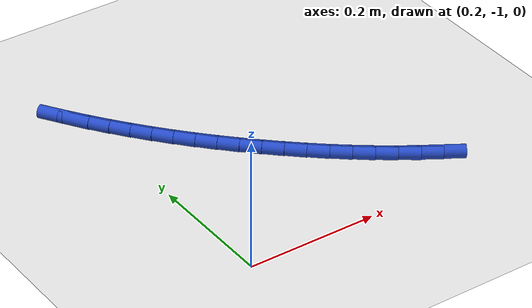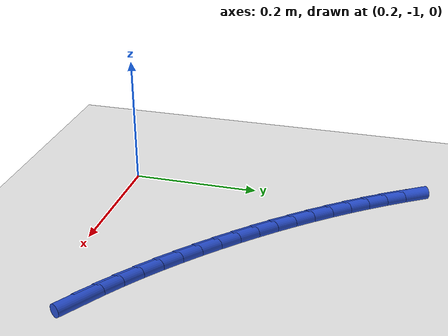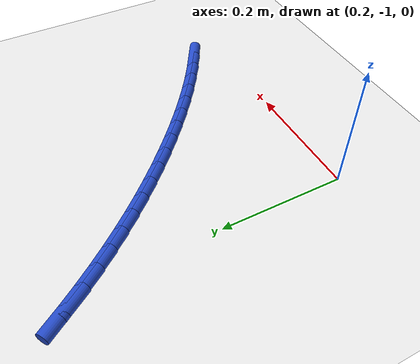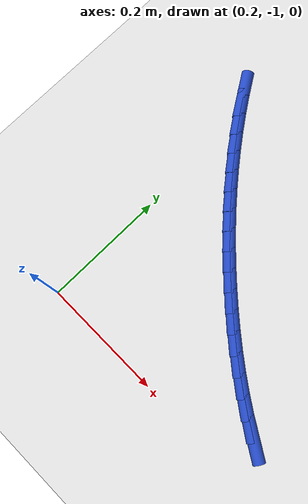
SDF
<sdf version="1.6">
 <world name="default">
  <model name="ground_plane">
   <static>1</static>
   <link name="link">
    <collision name="collision">
     <geometry><plane><normal>0 0 1</normal><size>100 100</size></plane></geometry>
     <surface><friction><ode><mu>100</mu><mu2>50</mu2></ode></friction></surface>
    </collision>
    <visual name="visual">
     <cast_shadows>0</cast_shadows>
     <geometry><plane><normal>0 0 1</normal><size>100 100</size></plane></geometry>
     <material>
      <script><uri>file://media/materials/scripts/gazebo.material</uri><name>Gazebo/WhiteGlow</name></script>
     </material>
    </visual>
   </link>
  </model>
  <model name="line">
   <link name="link_174">
    <pose>0.5600240665475372 -0.9397305397260841 0.01 0 1.57 -0.5530464830940499</pose>
    <collision name="collision">
     <geometry><cylinder><radius>0.01</radius><length>0.08</length></cylinder></geometry>
    </collision>
    <visual name="visual">
     <material>
      <script><name>Gazebo/Blue</name><uri>file://media/materials/scripts/gazebo.material</uri></script>
     </material>
     <geometry><cylinder><radius>0.01</radius><length>0.08</length></cylinder></geometry>
    </visual>
   </link>
   <link name="link_175">
    <pose>0.5330754842858729 -0.9230950526936753 0.01 0 1.57 -0.5882646371806903</pose>
    <collision name="collision">
     <geometry><cylinder><radius>0.01</radius><length>0.08</length></cylinder></geometry>
    </collision>
    <visual name="visual">
     <material>
      <script><name>Gazebo/Blue</name><uri>file://media/materials/scripts/gazebo.material</uri></script>
     </material>
     <geometry><cylinder><radius>0.01</radius><length>0.08</length></cylinder></geometry>
    </visual>
   </link>
   <link name="link_176">
    <pose>0.5066585546354913 -0.905473765889272 0.01 0 1.57 -0.6210084769775372</pose>
    <collision name="collision">
     <geometry><cylinder><radius>0.01</radius><length>0.08</length></cylinder></geometry>
    </collision>
    <visual name="visual">
     <material>
      <script><name>Gazebo/Blue</name><uri>file://media/materials/scripts/gazebo.material</uri></script>
     </material>
     <geometry><cylinder><radius>0.01</radius><length>0.08</length></cylinder></geometry>
    </visual>
   </link>
   <link name="link_177">
    <pose>0.48077214354737313 -0.8869537843397152 0.01 0 1.57 -0.6513743819536956</pose>
    <collision name="collision">
     <geometry><cylinder><radius>0.01</radius><length>0.08</length></cylinder></geometry>
    </collision>
    <visual name="visual">
     <material>
      <script><name>Gazebo/Blue</name><uri>file://media/materials/scripts/gazebo.material</uri></script>
     </material>
     <geometry><cylinder><radius>0.01</radius><length>0.08</length></cylinder></geometry>
    </visual>
   </link>
   <link name="link_178">
    <pose>0.4554151169724969 -0.8676222130718451 0.01 0 1.57 -0.6794636369965935</pose>
    <collision name="collision">
     <geometry><cylinder><radius>0.01</radius><length>0.08</length></cylinder></geometry>
    </collision>
    <visual name="visual">
     <material>
      <script><name>Gazebo/Blue</name><uri>file://media/materials/scripts/gazebo.material</uri></script>
     </material>
     <geometry><cylinder><radius>0.01</radius><length>0.08</length></cylinder></geometry>
    </visual>
   </link>
   <link name="link_179">
    <pose>0.43058634086184194 -0.847566157112501 0.01 0 1.57 -0.7053779009258652</pose>
    <collision name="collision">
     <geometry><cylinder><radius>0.01</radius><length>0.08</length></cylinder></geometry>
    </collision>
    <visual name="visual">
     <material>
      <script><name>Gazebo/Blue</name><uri>file://media/materials/scripts/gazebo.material</uri></script>
     </material>
     <geometry><cylinder><radius>0.01</radius><length>0.08</length></cylinder></geometry>
    </visual>
   </link>
   <link name="link_180">
    <pose>0.4062846811663875 -0.8268727214885236 0.01 0 1.57 -0.7292158086648249</pose>
    <collision name="collision">
     <geometry><cylinder><radius>0.01</radius><length>0.08</length></cylinder></geometry>
    </collision>
    <visual name="visual">
     <material>
      <script><name>Gazebo/Blue</name><uri>file://media/materials/scripts/gazebo.material</uri></script>
     </material>
     <geometry><cylinder><radius>0.01</radius><length>0.08</length></cylinder></geometry>
    </visual>
   </link>
   <link name="link_181">
    <pose>0.382509004824123 -0.8056290052012421 0.01 0 1.57 -0.7515646771364972</pose>
    <collision name="collision">
     <geometry><cylinder><radius>0.01</radius><length>0.08</length></cylinder></geometry>
    </collision>
    <visual name="visual">
     <material>
      <script><name>Gazebo/Blue</name><uri>file://media/materials/scripts/gazebo.material</uri></script>
     </material>
     <geometry><cylinder><radius>0.01</radius><length>0.08</length></cylinder></geometry>
    </visual>
   </link>
   <link name="link_182">
    <pose>0.3592612389764074 -0.7839034252914959 0.01 0 1.57 -0.774062361563729</pose>
    <collision name="collision">
     <geometry><cylinder><radius>0.01</radius><length>0.08</length></cylinder></geometry>
    </collision>
    <visual name="visual">
     <material>
      <script><name>Gazebo/Blue</name><uri>file://media/materials/scripts/gazebo.material</uri></script>
     </material>
     <geometry><cylinder><radius>0.01</radius><length>0.08</length></cylinder></geometry>
    </visual>
   </link>
   <link name="link_183">
    <pose>0.33655313814658255 -0.7617044044991529 0.01 0 1.57 -0.7970268244014338</pose>
    <collision name="collision">
     <geometry><cylinder><radius>0.01</radius><length>0.08</length></cylinder></geometry>
    </collision>
    <visual name="visual">
     <material>
      <script><name>Gazebo/Blue</name><uri>file://media/materials/scripts/gazebo.material</uri></script>
     </material>
     <geometry><cylinder><radius>0.01</radius><length>0.08</length></cylinder></geometry>
    </visual>
   </link>
   <link name="link_184">
    <pose>0.3143984256206484 -0.739028346641901 0.01 0 1.57 -0.8204517393822173</pose>
    <collision name="collision">
     <geometry><cylinder><radius>0.01</radius><length>0.08</length></cylinder></geometry>
    </collision>
    <visual name="visual">
     <material>
      <script><name>Gazebo/Blue</name><uri>file://media/materials/scripts/gazebo.material</uri></script>
     </material>
     <geometry><cylinder><radius>0.01</radius><length>0.08</length></cylinder></geometry>
    </visual>
   </link>
   <link name="link_185">
    <pose>0.29281082468460307 -0.7158716555374269 0.01 0 1.57 -0.8443285287022123</pose>
    <collision name="collision">
     <geometry><cylinder><radius>0.01</radius><length>0.08</length></cylinder></geometry>
    </collision>
    <visual name="visual">
     <material>
      <script><name>Gazebo/Blue</name><uri>file://media/materials/scripts/gazebo.material</uri></script>
     </material>
     <geometry><cylinder><radius>0.01</radius><length>0.08</length></cylinder></geometry>
    </visual>
   </link>
   <link name="link_186">
    <pose>0.27180405862444523 -0.6922307350034175 0.01 0 1.57 -0.8686462404611859</pose>
    <collision name="collision">
     <geometry><cylinder><radius>0.01</radius><length>0.08</length></cylinder></geometry>
    </collision>
    <visual name="visual">
     <material>
      <script><name>Gazebo/Blue</name><uri>file://media/materials/scripts/gazebo.material</uri></script>
     </material>
     <geometry><cylinder><radius>0.01</radius><length>0.08</length></cylinder></geometry>
    </visual>
   </link>
   <link name="link_187">
    <pose>0.2513918507261736 -0.668101988857559 0.01 0 1.57 -0.8933914441823287</pose>
    <collision name="collision">
     <geometry><cylinder><radius>0.01</radius><length>0.08</length></cylinder></geometry>
    </collision>
    <visual name="visual">
     <material>
      <script><name>Gazebo/Blue</name><uri>file://media/materials/scripts/gazebo.material</uri></script>
     </material>
     <geometry><cylinder><radius>0.01</radius><length>0.08</length></cylinder></geometry>
    </visual>
   </link>
   <link name="link_188">
    <pose>0.2315879242757869 -0.643481820917539 0.01 0 1.57 -0.9185481488001748</pose>
    <collision name="collision">
     <geometry><cylinder><radius>0.01</radius><length>0.08</length></cylinder></geometry>
    </collision>
    <visual name="visual">
     <material>
      <script><name>Gazebo/Blue</name><uri>file://media/materials/scripts/gazebo.material</uri></script>
     </material>
     <geometry><cylinder><radius>0.01</radius><length>0.08</length></cylinder></geometry>
    </visual>
   </link>
   <link name="link_189">
    <pose>0.21240600255928335 -0.6183666350010436 0.01 0 1.57 -0.9440977474920044</pose>
    <collision name="collision">
     <geometry><cylinder><radius>0.01</radius><length>0.08</length></cylinder></geometry>
    </collision>
    <visual name="visual">
     <material>
      <script><name>Gazebo/Blue</name><uri>file://media/materials/scripts/gazebo.material</uri></script>
     </material>
     <geometry><cylinder><radius>0.01</radius><length>0.08</length></cylinder></geometry>
    </visual>
   </link>
   <link name="link_190">
    <pose>0.19385980886266255 -0.5927528349257607 0.01 0 1.57 -0.9700189935440271</pose>
    <collision name="collision">
     <geometry><cylinder><radius>0.01</radius><length>0.08</length></cylinder></geometry>
    </collision>
    <visual name="visual">
     <material>
      <script><name>Gazebo/Blue</name><uri>file://media/materials/scripts/gazebo.material</uri></script>
     </material>
     <geometry><cylinder><radius>0.01</radius><length>0.08</length></cylinder></geometry>
    </visual>
   </link>
   <link name="link_191">
    <pose>0.1759630664719227 -0.5666368245093766 0.01 0 1.57 -0.996321582669699</pose>
    <collision name="collision">
     <geometry><cylinder><radius>0.01</radius><length>0.08</length></cylinder></geometry>
    </collision>
    <visual name="visual">
     <material>
      <script><name>Gazebo/Blue</name><uri>file://media/materials/scripts/gazebo.material</uri></script>
     </material>
     <geometry><cylinder><radius>0.01</radius><length>0.08</length></cylinder></geometry>
    </visual>
   </link>
  </model>
 </world>
</sdf>
